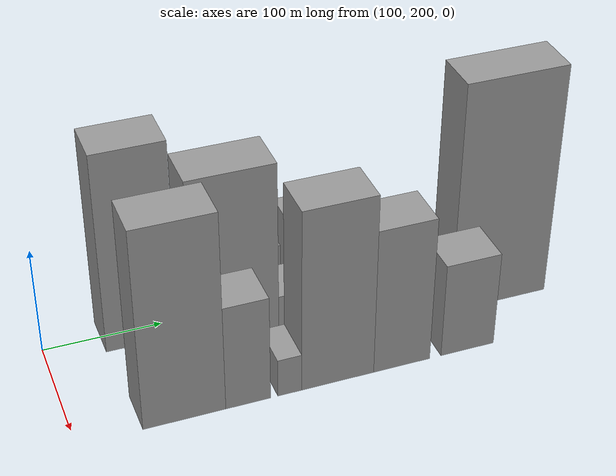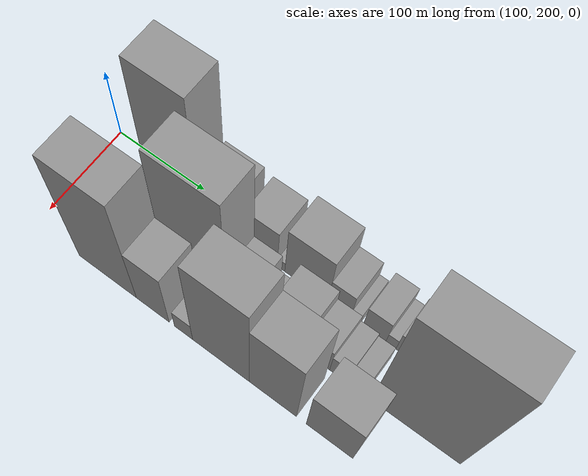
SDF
<sdf version="1.6">
 <world name="default">
  <model name="building_29">
   <static>1</static>
   <pose>100.0000 278.4300 0 0.000000 0.000000 0.000000</pose>
   <link name="link">
    <pose>0 0 94.50 0 0 0</pose>
    <collision name="collision"><geometry><box><size>40.0000 60.7719 189.0000</size></box></geometry></collision>
    <visual name="visual">
     <cast_shadows>0</cast_shadows>
     <geometry><box><size>40.0000 60.7719 189.0000</size></box></geometry>
     <material>
      <script>
       <uri>model://grey_wall/materials/scripts</uri>
       <uri>model://grey_wall/materials/textures</uri>
       <name>vrc/grey_wall</name>
      </script>
     </material>
    </visual>
   </link>
  </model>
  <model name="building_30">
   <static>1</static>
   <pose>100.0000 332.4769 0 0.000000 0.000000 0.000000</pose>
   <link name="link">
    <pose>0 0 37.50 0 0 0</pose>
    <collision name="collision"><geometry><box><size>40.0000 41.3220 75.0000</size></box></geometry></collision>
    <visual name="visual">
     <cast_shadows>0</cast_shadows>
     <geometry><box><size>40.0000 41.3220 75.0000</size></box></geometry>
     <material>
      <script>
       <uri>model://grey_wall/materials/scripts</uri>
       <uri>model://grey_wall/materials/textures</uri>
       <name>vrc/grey_wall</name>
      </script>
     </material>
    </visual>
   </link>
  </model>
  <model name="building_31">
   <static>1</static>
   <pose>100.0000 380.1412 0 0.000000 0.000000 0.000000</pose>
   <link name="link">
    <pose>0 0 34.50 0 0 0</pose>
    <collision name="collision"><geometry><box><size>40.0000 36.0065 69.0000</size></box></geometry></collision>
    <visual name="visual">
     <cast_shadows>0</cast_shadows>
     <geometry><box><size>40.0000 36.0065 69.0000</size></box></geometry>
     <material>
      <script>
       <uri>model://grey_wall/materials/scripts</uri>
       <uri>model://grey_wall/materials/textures</uri>
       <name>vrc/grey_wall</name>
      </script>
     </material>
    </visual>
   </link>
  </model>
  <model name="building_32">
   <static>1</static>
   <pose>100.0000 402.3121 0 0.000000 0.000000 0.000000</pose>
   <link name="link">
    <pose>0 0 9.00 0 0 0</pose>
    <collision name="collision"><geometry><box><size>40.0000 8.3354 18.0000</size></box></geometry></collision>
    <visual name="visual">
     <cast_shadows>0</cast_shadows>
     <geometry><box><size>40.0000 8.3354 18.0000</size></box></geometry>
     <material>
      <script>
       <uri>model://grey_wall/materials/scripts</uri>
       <uri>model://grey_wall/materials/textures</uri>
       <name>vrc/grey_wall</name>
      </script>
     </material>
    </visual>
   </link>
  </model>
  <model name="building_33">
   <static>1</static>
   <pose>100.0000 429.7398 0 0.000000 0.000000 0.000000</pose>
   <link name="link">
    <pose>0 0 43.50 0 0 0</pose>
    <collision name="collision"><geometry><box><size>40.0000 46.5200 87.0000</size></box></geometry></collision>
    <visual name="visual">
     <cast_shadows>0</cast_shadows>
     <geometry><box><size>40.0000 46.5200 87.0000</size></box></geometry>
     <material>
      <script>
       <uri>model://grey_wall/materials/scripts</uri>
       <uri>model://grey_wall/materials/textures</uri>
       <name>vrc/grey_wall</name>
      </script>
     </material>
    </visual>
   </link>
  </model>
  <model name="building_34">
   <static>1</static>
   <pose>100.0000 465.1372 0 0.000000 0.000000 0.000000</pose>
   <link name="link">
    <pose>0 0 24.00 0 0 0</pose>
    <collision name="collision"><geometry><box><size>40.0000 24.2748 48.0000</size></box></geometry></collision>
    <visual name="visual">
     <cast_shadows>0</cast_shadows>
     <geometry><box><size>40.0000 24.2748 48.0000</size></box></geometry>
     <material>
      <script>
       <uri>model://grey_wall/materials/scripts</uri>
       <uri>model://grey_wall/materials/textures</uri>
       <name>vrc/grey_wall</name>
      </script>
     </material>
    </visual>
   </link>
  </model>
  <model name="building_35">
   <static>1</static>
   <pose>100.0000 482.0341 0 0.000000 0.000000 0.000000</pose>
   <link name="link">
    <pose>0 0 10.50 0 0 0</pose>
    <collision name="collision"><geometry><box><size>40.0000 9.5189 21.0000</size></box></geometry></collision>
    <visual name="visual">
     <cast_shadows>0</cast_shadows>
     <geometry><box><size>40.0000 9.5189 21.0000</size></box></geometry>
     <material>
      <script>
       <uri>model://grey_wall/materials/scripts</uri>
       <uri>model://grey_wall/materials/textures</uri>
       <name>vrc/grey_wall</name>
      </script>
     </material>
    </visual>
   </link>
  </model>
  <model name="building_36">
   <static>1</static>
   <pose>100.0000 501.6301 0 0.000000 0.000000 0.000000</pose>
   <link name="link">
    <pose>0 0 22.50 0 0 0</pose>
    <collision name="collision"><geometry><box><size>40.0000 23.6731 45.0000</size></box></geometry></collision>
    <visual name="visual">
     <cast_shadows>0</cast_shadows>
     <geometry><box><size>40.0000 23.6731 45.0000</size></box></geometry>
     <material>
      <script>
       <uri>model://grey_wall/materials/scripts</uri>
       <uri>model://grey_wall/materials/textures</uri>
       <name>vrc/grey_wall</name>
      </script>
     </material>
    </visual>
   </link>
  </model>
  <model name="building_37">
   <static>1</static>
   <pose>100.0000 518.7028 0 0.000000 0.000000 0.000000</pose>
   <link name="link">
    <pose>0 0 10.50 0 0 0</pose>
    <collision name="collision"><geometry><box><size>40.0000 10.4723 21.0000</size></box></geometry></collision>
    <visual name="visual">
     <cast_shadows>0</cast_shadows>
     <geometry><box><size>40.0000 10.4723 21.0000</size></box></geometry>
     <material>
      <script>
       <uri>model://grey_wall/materials/scripts</uri>
       <uri>model://grey_wall/materials/textures</uri>
       <name>vrc/grey_wall</name>
      </script>
     </material>
    </visual>
   </link>
  </model>
  <model name="building_38">
   <static>1</static>
   <pose>100.0000 534.6236 0 0.000000 0.000000 0.000000</pose>
   <link name="link">
    <pose>0 0 19.50 0 0 0</pose>
    <collision name="collision"><geometry><box><size>40.0000 21.3694 39.0000</size></box></geometry></collision>
    <visual name="visual">
     <cast_shadows>0</cast_shadows>
     <geometry><box><size>40.0000 21.3694 39.0000</size></box></geometry>
     <material>
      <script>
       <uri>model://grey_wall/materials/scripts</uri>
       <uri>model://grey_wall/materials/textures</uri>
       <name>vrc/grey_wall</name>
      </script>
     </material>
    </visual>
   </link>
  </model>
  <model name="building_60">
   <static>1</static>
   <pose>149.0000 300.8879 0 0.000000 0.000000 0.000000</pose>
   <link name="link">
    <pose>0 0 13.50 0 0 0</pose>
    <collision name="collision"><geometry><box><size>40.0000 11.8588 27.0000</size></box></geometry></collision>
    <visual name="visual">
     <cast_shadows>0</cast_shadows>
     <geometry><box><size>40.0000 11.8588 27.0000</size></box></geometry>
     <material>
      <script>
       <uri>model://grey_wall/materials/scripts</uri>
       <uri>model://grey_wall/materials/textures</uri>
       <name>vrc/grey_wall</name>
      </script>
     </material>
    </visual>
   </link>
  </model>
  <model name="building_61">
   <static>1</static>
   <pose>149.0000 343.0089 0 0.000000 0.000000 0.000000</pose>
   <link name="link">
    <pose>0 0 91.50 0 0 0</pose>
    <collision name="collision"><geometry><box><size>40.0000 72.3832 183.0000</size></box></geometry></collision>
    <visual name="visual">
     <cast_shadows>0</cast_shadows>
     <geometry><box><size>40.0000 72.3832 183.0000</size></box></geometry>
     <material>
      <script>
       <uri>model://grey_wall/materials/scripts</uri>
       <uri>model://grey_wall/materials/textures</uri>
       <name>vrc/grey_wall</name>
      </script>
     </material>
    </visual>
   </link>
  </model>
  <model name="building_62">
   <static>1</static>
   <pose>149.0000 393.9358 0 0.000000 0.000000 0.000000</pose>
   <link name="link">
    <pose>0 0 28.50 0 0 0</pose>
    <collision name="collision"><geometry><box><size>40.0000 29.4706 57.0000</size></box></geometry></collision>
    <visual name="visual">
     <cast_shadows>0</cast_shadows>
     <geometry><box><size>40.0000 29.4706 57.0000</size></box></geometry>
     <material>
      <script>
       <uri>model://grey_wall/materials/scripts</uri>
       <uri>model://grey_wall/materials/textures</uri>
       <name>vrc/grey_wall</name>
      </script>
     </material>
    </visual>
   </link>
  </model>
  <model name="building_63">
   <static>1</static>
   <pose>149.0000 416.5740 0 0.000000 0.000000 0.000000</pose>
   <link name="link">
    <pose>0 0 10.50 0 0 0</pose>
    <collision name="collision"><geometry><box><size>40.0000 9.8058 21.0000</size></box></geometry></collision>
    <visual name="visual">
     <cast_shadows>0</cast_shadows>
     <geometry><box><size>40.0000 9.8058 21.0000</size></box></geometry>
     <material>
      <script>
       <uri>model://grey_wall/materials/scripts</uri>
       <uri>model://grey_wall/materials/textures</uri>
       <name>vrc/grey_wall</name>
      </script>
     </material>
    </visual>
   </link>
  </model>
  <model name="building_64">
   <static>1</static>
   <pose>149.0000 445.6894 0 0.000000 0.000000 0.000000</pose>
   <link name="link">
    <pose>0 0 33.00 0 0 0</pose>
    <collision name="collision"><geometry><box><size>40.0000 38.4249 66.0000</size></box></geometry></collision>
    <visual name="visual">
     <cast_shadows>0</cast_shadows>
     <geometry><box><size>40.0000 38.4249 66.0000</size></box></geometry>
     <material>
      <script>
       <uri>model://grey_wall/materials/scripts</uri>
       <uri>model://grey_wall/materials/textures</uri>
       <name>vrc/grey_wall</name>
      </script>
     </material>
    </visual>
   </link>
  </model>
  <model name="building_65">
   <static>1</static>
   <pose>149.0000 477.2023 0 0.000000 0.000000 0.000000</pose>
   <link name="link">
    <pose>0 0 24.00 0 0 0</pose>
    <collision name="collision"><geometry><box><size>40.0000 24.6009 48.0000</size></box></geometry></collision>
    <visual name="visual">
     <cast_shadows>0</cast_shadows>
     <geometry><box><size>40.0000 24.6009 48.0000</size></box></geometry>
     <material>
      <script>
       <uri>model://grey_wall/materials/scripts</uri>
       <uri>model://grey_wall/materials/textures</uri>
       <name>vrc/grey_wall</name>
      </script>
     </material>
    </visual>
   </link>
  </model>
  <model name="building_66">
   <static>1</static>
   <pose>149.0000 498.6786 0 0.000000 0.000000 0.000000</pose>
   <link name="link">
    <pose>0 0 18.00 0 0 0</pose>
    <collision name="collision"><geometry><box><size>40.0000 18.3516 36.0000</size></box></geometry></collision>
    <visual name="visual">
     <cast_shadows>0</cast_shadows>
     <geometry><box><size>40.0000 18.3516 36.0000</size></box></geometry>
     <material>
      <script>
       <uri>model://grey_wall/materials/scripts</uri>
       <uri>model://grey_wall/materials/textures</uri>
       <name>vrc/grey_wall</name>
      </script>
     </material>
    </visual>
   </link>
  </model>
  <model name="building_67">
   <static>1</static>
   <pose>149.0000 516.3742 0 0.000000 0.000000 0.000000</pose>
   <link name="link">
    <pose>0 0 15.00 0 0 0</pose>
    <collision name="collision"><geometry><box><size>40.0000 17.0397 30.0000</size></box></geometry></collision>
    <visual name="visual">
     <cast_shadows>0</cast_shadows>
     <geometry><box><size>40.0000 17.0397 30.0000</size></box></geometry>
     <material>
      <script>
       <uri>model://grey_wall/materials/scripts</uri>
       <uri>model://grey_wall/materials/textures</uri>
       <name>vrc/grey_wall</name>
      </script>
     </material>
    </visual>
   </link>
  </model>
  <model name="building_68">
   <static>1</static>
   <pose>149.0000 575.5904 0 0.000000 0.000000 0.000000</pose>
   <link name="link">
    <pose>0 0 109.50 0 0 0</pose>
    <collision name="collision"><geometry><box><size>40.0000 87.3926 219.0000</size></box></geometry></collision>
    <visual name="visual">
     <cast_shadows>0</cast_shadows>
     <geometry><box><size>40.0000 87.3926 219.0000</size></box></geometry>
     <material>
      <script>
       <uri>model://grey_wall/materials/scripts</uri>
       <uri>model://grey_wall/materials/textures</uri>
       <name>vrc/grey_wall</name>
      </script>
     </material>
    </visual>
   </link>
  </model>
  <model name="building_92">
   <static>1</static>
   <pose>198.0000 284.8194 0 0.000000 0.000000 0.000000</pose>
   <link name="link">
    <pose>0 0 93.00 0 0 0</pose>
    <collision name="collision"><geometry><box><size>40.0000 66.2974 186.0000</size></box></geometry></collision>
    <visual name="visual">
     <cast_shadows>0</cast_shadows>
     <geometry><box><size>40.0000 66.2974 186.0000</size></box></geometry>
     <material>
      <script>
       <uri>model://grey_wall/materials/scripts</uri>
       <uri>model://grey_wall/materials/textures</uri>
       <name>vrc/grey_wall</name>
      </script>
     </material>
    </visual>
   </link>
  </model>
  <model name="building_93">
   <static>1</static>
   <pose>198.0000 336.3163 0 0.000000 0.000000 0.000000</pose>
   <link name="link">
    <pose>0 0 49.50 0 0 0</pose>
    <collision name="collision"><geometry><box><size>40.0000 36.6966 99.0000</size></box></geometry></collision>
    <visual name="visual">
     <cast_shadows>0</cast_shadows>
     <geometry><box><size>40.0000 36.6966 99.0000</size></box></geometry>
     <material>
      <script>
       <uri>model://grey_wall/materials/scripts</uri>
       <uri>model://grey_wall/materials/textures</uri>
       <name>vrc/grey_wall</name>
      </script>
     </material>
    </visual>
   </link>
  </model>
  <model name="building_94">
   <static>1</static>
   <pose>198.0000 370.6206 0 0.000000 0.000000 0.000000</pose>
   <link name="link">
    <pose>0 0 18.00 0 0 0</pose>
    <collision name="collision"><geometry><box><size>40.0000 19.9119 36.0000</size></box></geometry></collision>
    <visual name="visual">
     <cast_shadows>0</cast_shadows>
     <geometry><box><size>40.0000 19.9119 36.0000</size></box></geometry>
     <material>
      <script>
       <uri>model://grey_wall/materials/scripts</uri>
       <uri>model://grey_wall/materials/textures</uri>
       <name>vrc/grey_wall</name>
      </script>
     </material>
    </visual>
   </link>
  </model>
  <model name="building_95">
   <static>1</static>
   <pose>198.0000 411.0829 0 0.000000 0.000000 0.000000</pose>
   <link name="link">
    <pose>0 0 85.50 0 0 0</pose>
    <collision name="collision"><geometry><box><size>40.0000 61.0126 171.0000</size></box></geometry></collision>
    <visual name="visual">
     <cast_shadows>0</cast_shadows>
     <geometry><box><size>40.0000 61.0126 171.0000</size></box></geometry>
     <material>
      <script>
       <uri>model://grey_wall/materials/scripts</uri>
       <uri>model://grey_wall/materials/textures</uri>
       <name>vrc/grey_wall</name>
      </script>
     </material>
    </visual>
   </link>
  </model>
  <model name="building_96">
   <static>1</static>
   <pose>198.0000 465.9811 0 0.000000 0.000000 0.000000</pose>
   <link name="link">
    <pose>0 0 69.00 0 0 0</pose>
    <collision name="collision"><geometry><box><size>40.0000 48.7837 138.0000</size></box></geometry></collision>
    <visual name="visual">
     <cast_shadows>0</cast_shadows>
     <geometry><box><size>40.0000 48.7837 138.0000</size></box></geometry>
     <material>
      <script>
       <uri>model://grey_wall/materials/scripts</uri>
       <uri>model://grey_wall/materials/textures</uri>
       <name>vrc/grey_wall</name>
      </script>
     </material>
    </visual>
   </link>
  </model>
  <model name="building_97">
   <static>1</static>
   <pose>198.0000 523.7906 0 0.000000 0.000000 0.000000</pose>
   <link name="link">
    <pose>0 0 45.00 0 0 0</pose>
    <collision name="collision"><geometry><box><size>40.0000 46.8353 90.0000</size></box></geometry></collision>
    <visual name="visual">
     <cast_shadows>0</cast_shadows>
     <geometry><box><size>40.0000 46.8353 90.0000</size></box></geometry>
     <material>
      <script>
       <uri>model://grey_wall/materials/scripts</uri>
       <uri>model://grey_wall/materials/textures</uri>
       <name>vrc/grey_wall</name>
      </script>
     </material>
    </visual>
   </link>
  </model>
 </world>
</sdf>
